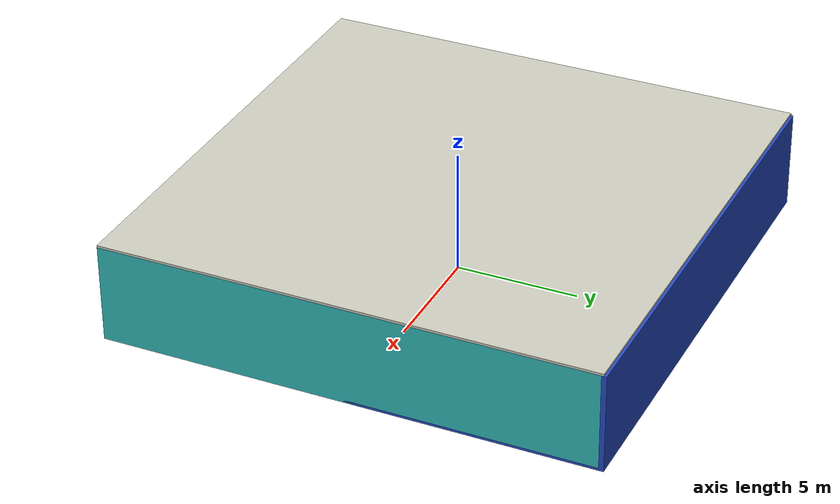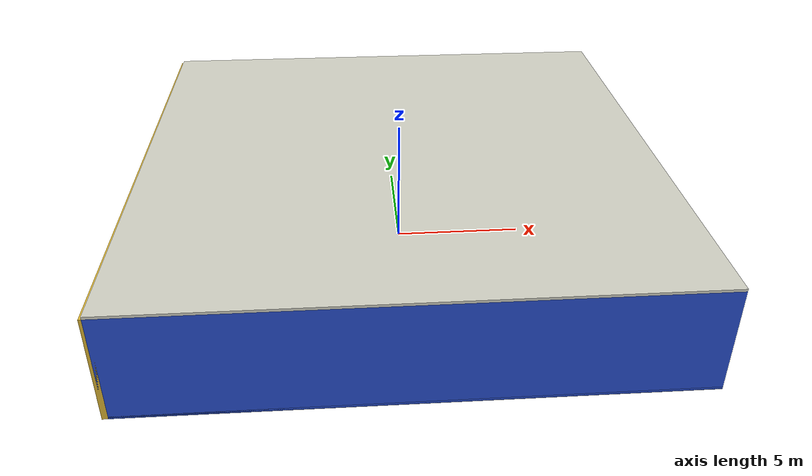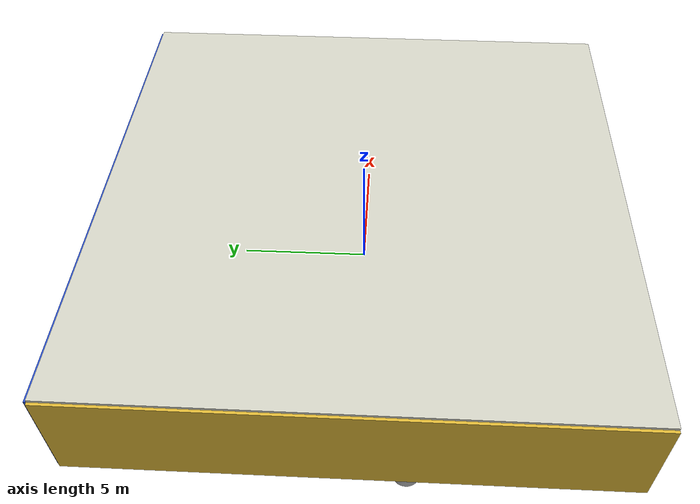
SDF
<sdf version="1.4">
 <world name="default">
  <physics type="ode">
   <max_step_size>0.001</max_step_size>
   <real_time_factor>1</real_time_factor>
   <real_time_update_rate>1000</real_time_update_rate>
   <gravity>0 0 -9.8</gravity>
  </physics>
  <scene><ambient>0.4 0.4 0.4 1</ambient><background>0.7 0.7 0.7 1</background><shadows>1</shadows></scene>
  <model name="Surrounding">
   <static>1</static>
   <link name="Ceiling">
    <collision name="Ceiling_Collision"><geometry><box><size>20 20 0.1</size></box></geometry></collision>
    <visual name="Ceiling_Visual">
     <geometry><box><size>20 20 0.1</size></box></geometry>
     <material>
      <script><uri>file://media/materials/scripts/gazebo.material</uri><name>Gazebo/PaintedWall</name></script>
     </material>
    </visual>
    <pose>0 0 4.05 0 0 0</pose>
   </link>
   <link name="Wall_South">
    <collision name="Wall_South_Collision">
     <geometry><box><size>20 0 4</size></box></geometry>
     <pose>0 0 2 0 -0 0</pose>
    </collision>
    <visual name="Wall_South_Visual">
     <pose>0 0 2 0 -0 0</pose>
     <geometry><box><size>20 0 4</size></box></geometry>
     <material>
      <script><uri>file://media/materials/scripts/gazebo.material</uri><name>Gazebo/BlueGlow</name></script>
     </material>
    </visual>
    <velocity_decay><linear>0</linear><angular>0</angular></velocity_decay>
    <pose>0 -10 0 0 -0 0</pose>
   </link>
   <link name="Wall_East">
    <collision name="Wall_21_Collision">
     <geometry><box><size>20 0 4</size></box></geometry>
     <pose>0 0 2 0 -0 0</pose>
    </collision>
    <visual name="Wall_21_Visual">
     <pose>0 0 2 0 -0 0</pose>
     <geometry><box><size>20 0 4</size></box></geometry>
     <material>
      <script><uri>file://media/materials/scripts/gazebo.material</uri><name>Gazebo/TurquoiseGlow</name></script>
     </material>
    </visual>
    <velocity_decay><linear>0</linear><angular>0</angular></velocity_decay>
    <pose>10 0 0 0 -0 1.5708</pose>
   </link>
   <link name="Wall_North">
    <collision name="Wall_22_Collision">
     <geometry><box><size>20 0.2 4</size></box></geometry>
     <pose>0 0 2 0 -0 0</pose>
    </collision>
    <visual name="Wall_22_Visual">
     <pose>0 0 2 0 -0 0</pose>
     <geometry><box><size>20 0.2 4</size></box></geometry>
     <material>
      <script><uri>file://media/materials/scripts/gazebo.material</uri><name>Gazebo/BlueLaser</name></script>
     </material>
    </visual>
    <velocity_decay><linear>0</linear><angular>0</angular></velocity_decay>
    <pose>0 10 0 0 -0 0</pose>
   </link>
   <link name="Wall_West">
    <collision name="Wall_23_Collision">
     <geometry><box><size>20 0.2 4</size></box></geometry>
     <pose>0 0 2 0 -0 0</pose>
    </collision>
    <visual name="Wall_23_Visual">
     <pose>0 0 2 0 -0 0</pose>
     <geometry><box><size>20 0.2 4</size></box></geometry>
     <material>
      <script><uri>file://media/materials/scripts/gazebo.material</uri><name>Gazebo/Gold</name></script>
     </material>
    </visual>
    <velocity_decay><linear>0</linear><angular>0</angular></velocity_decay>
    <pose>-10 0 0 0 0 -1.5708</pose>
   </link>
   <link name="Ground_link">
    <collision name="collision">
     <pose>0 0 .05 0 -0 0</pose>
     <geometry><box><size>20 20 0.1</size></box></geometry>
    </collision>
    <visual name="visual">
     <pose>0 0 .05 0 -0 0</pose>
     <geometry><box><size>20 20 0.1</size></box></geometry>
     <material>
      <script><uri>file://media/materials/scripts/gazebo.material</uri><name>Gazebo/BlueGlow</name></script>
     </material>
    </visual>
   </link>
   <static>1</static>
  </model>
  <spherical_coordinates>
   <surface_model>EARTH_WGS84</surface_model>
   <latitude_deg>0</latitude_deg>
   <longitude_deg>0</longitude_deg>
   <elevation>0</elevation>
   <heading_deg>0</heading_deg>
  </spherical_coordinates>
  <light name="lightball_0" type="diffuse">
   <diffuse>0.8 0.8 0.8 1</diffuse>
   <specular>0.2 0.2 0.2 1</specular>
   <attenuation>
    <range>100</range>
    <constant>0.7</constant>
    <linear>0.01</linear>
    <quadratic>0.001</quadratic>
   </attenuation>
   <direction>-0.5 0.1 -0.9</direction>
   <pose>-4.23094239181 7.8447238789 1.70255044602 0 0 0</pose>
  </light>
  <light name="lightball_1" type="diffuse">
   <diffuse>0.8 0.8 0.8 1</diffuse>
   <specular>0.2 0.2 0.2 1</specular>
   <attenuation>
    <range>100</range>
    <constant>0.7</constant>
    <linear>0.01</linear>
    <quadratic>0.001</quadratic>
   </attenuation>
   <direction>-0.5 0.1 -0.9</direction>
   <pose>1.58082399802 -2.96575763037 2.90356370341 0 0 0</pose>
  </light>
  <light name="lightball_2" type="diffuse">
   <diffuse>0.8 0.8 0.8 1</diffuse>
   <specular>0.2 0.2 0.2 1</specular>
   <attenuation>
    <range>100</range>
    <constant>0.7</constant>
    <linear>0.01</linear>
    <quadratic>0.001</quadratic>
   </attenuation>
   <direction>-0.5 0.1 -0.9</direction>
   <pose>-0.933613768795 -4.03693456324 3.79106532167 0 0 0</pose>
  </light>
  <include>
   <uri>model://textured_shapes</uri>
   <pose>-8.03270581328 -1.9981826392 0 0 0 1.51298781388</pose>
  </include>
  <include><uri>model://table</uri><pose>-0.951245557371 -7.78658680263 0 0 0 2.70537114071</pose></include>
  <include>
   <uri>model://construction_cone</uri>
   <pose>-1.14473143473 1.35709583892 0 0 0 2.53343842389</pose>
  </include>
  <include><uri>model://table</uri><pose>0.991971825793 -1.96269380815 0 0 0 0.0101005866535</pose></include>
  <include>
   <uri>model://construction_cone</uri>
   <pose>1.87051789483 4.68871742786 0 0 0 0.602316755231</pose>
  </include>
  <include>
   <uri>model://robocup_3Dsim_goal</uri>
   <pose>4.56247849326 7.35386133747 0 0 0 0.642236833537</pose>
  </include>
 </world>
</sdf>

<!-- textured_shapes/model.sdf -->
<sdf version="1.6">
  <model name="textured_shapes">
    <pose>0 0 0.5 0 0 0</pose>
    <link name="box">
      <pose>0 -1.5 0 0 0 0</pose>
      <collision name="collision">
        <geometry>
          <box>
            <size>1 1 1</size>
          </box>
        </geometry>
      </collision>
      <visual name="visual">
        <geometry>
          <box>
            <size>1 1 1</size>
          </box>
        </geometry>
        <material>
          <script>
            <uri>model://../model_source/models/textured_shapes/materials/scripts</uri>
            <uri>model://../model_source/models/textured_shapes/materials/textures</uri>
            <name>TexturedShape/Squares</name>
          </script>
        </material>
      </visual>
    </link>
    <link name="sphere">
      <collision name="collision">
        <geometry>
          <sphere>
            <radius>0.5</radius>
          </sphere>
        </geometry>
      </collision>
      <visual name="visual">
        <geometry>
          <sphere>
            <radius>0.5</radius>
          </sphere>
        </geometry>
        <material>
          <script>
            <uri>model://../model_source/models/textured_shapes/materials/scripts</uri>
            <uri>model://../model_source/models/textured_shapes/materials/textures</uri>
            <name>TexturedShape/Squares</name>
          </script>
        </material>
      </visual>
    </link>
    <link name="cylinder">
      <pose>0 1.5 0 0 0 0</pose>
      <collision name="collision">
        <geometry>
          <cylinder>
            <radius>0.5</radius>
            <length>1</length>
          </cylinder>
        </geometry>
      </collision>
      <visual name="visual">
        <geometry>
          <cylinder>
            <radius>0.5</radius>
            <length>1</length>
          </cylinder>
        </geometry>
        <material>
          <script>
            <uri>model://../model_source/models/textured_shapes/materials/scripts</uri>
            <uri>model://../model_source/models/textured_shapes/materials/textures</uri>
            <name>TexturedShape/Squares</name>
          </script>
        </material>
      </visual>
    </link>
  </model>
</sdf>

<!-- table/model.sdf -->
<sdf version="1.5">
  <model name="table">
    <static>true</static>
    <link name="link">
      <collision name="surface">
        <pose>0 0 1.0 0 0 0</pose>
        <geometry>
          <box>
            <size>1.5 0.8 0.03</size>
          </box>
        </geometry>
        <surface>
          <friction>
            <ode>
              <mu>0.6</mu>
              <mu2>0.6</mu2>
            </ode>
          </friction>
        </surface>
      </collision>
      <visual name="visual1">
        <pose>0 0 1.0 0 0 0</pose>
        <geometry>
          <box>
            <size>1.5 0.8 0.03</size>
          </box>
        </geometry>
        <material>
          <script>
            <uri>model://media/materials/scripts/gazebo.material</uri>
            <name>Gazebo/Wood</name>
          </script>
        </material>
      </visual>
      <collision name="front_left_leg">
        <pose>0.68 0.38 0.5 0 0 0</pose>
        <geometry>
          <cylinder>
            <radius>0.02</radius>
            <length>1.0</length>
          </cylinder>
        </geometry>
      </collision>
      <visual name="front_left_leg">
        <pose>0.68 0.38 0.5 0 0 0</pose>
        <geometry>
          <cylinder>
            <radius>0.02</radius>
            <length>1.0</length>
          </cylinder>
        </geometry>
        <material>
          <script>
            <uri>model://media/materials/scripts/gazebo.material</uri>
            <name>Gazebo/Grey</name>
          </script>
        </material>
      </visual>
      <collision name="front_right_leg">
        <pose>0.68 -0.38 0.5 0 0 0</pose>
        <geometry>
          <cylinder>
            <radius>0.02</radius>
            <length>1.0</length>
          </cylinder>
        </geometry>
      </collision>
      <visual name="front_right_leg">
        <pose>0.68 -0.38 0.5 0 0 0</pose>
        <geometry>
          <cylinder>
            <radius>0.02</radius>
            <length>1.0</length>
          </cylinder>
        </geometry>
        <material>
          <script>
            <uri>model://media/materials/scripts/gazebo.material</uri>
            <name>Gazebo/Grey</name>
          </script>
        </material>
      </visual>
      <collision name="back_right_leg">
        <pose>-0.68 -0.38 0.5 0 0 0</pose>
        <geometry>
          <cylinder>
            <radius>0.02</radius>
            <length>1.0</length>
          </cylinder>
        </geometry>
      </collision>
      <visual name="back_right_leg">
        <pose>-0.68 -0.38 0.5 0 0 0</pose>
        <geometry>
          <cylinder>
            <radius>0.02</radius>
            <length>1.0</length>
          </cylinder>
        </geometry>
        <material>
          <script>
            <uri>model://media/materials/scripts/gazebo.material</uri>
            <name>Gazebo/Grey</name>
          </script>
        </material>
      </visual>
      <collision name="back_left_leg">
        <pose>-0.68 0.38 0.5 0 0 0</pose>
        <geometry>
          <cylinder>
            <radius>0.02</radius>
            <length>1.0</length>
          </cylinder>
        </geometry>
      </collision>
      <visual name="back_left_leg">
        <pose>-0.68 0.38 0.5 0 0 0</pose>
        <geometry>
          <cylinder>
            <radius>0.02</radius>
            <length>1.0</length>
          </cylinder>
        </geometry>
        <material>
          <script>
            <uri>model://media/materials/scripts/gazebo.material</uri>
            <name>Gazebo/Grey</name>
          </script>
        </material>
      </visual>
    </link>
  </model>
</sdf>

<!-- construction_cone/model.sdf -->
<sdf version="1.5">
  <model name="Construction Cone">
    <link name="link">
      <collision name="collision">
        <geometry>
          <mesh>
            <scale>10 10 10</scale>
            <uri>file://isr-testbed/construction_cone/meshes/construction_cone.dae</uri>
          </mesh>
        </geometry>
      </collision>
      <visual name="visual">
        <geometry>
          <mesh>
            <scale>10 10 10</scale>
            <uri>file://isr-testbed/construction_cone/meshes/construction_cone.dae</uri>
          </mesh>
        </geometry>
      </visual>
    </link>
  </model>
</sdf>

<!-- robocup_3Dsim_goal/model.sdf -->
<sdf version="1.5">
  <model name="robocup_3d_goal">
    <static>true</static>
    <link name="left_post">
      <pose>0 1.05 0.45 0 0 0</pose>
      <collision name="collision">
        <geometry>
          <cylinder>
            <radius>0.05</radius>
            <length>0.9</length>
          </cylinder>
        </geometry>
      </collision>
      <visual name="visual">
        <geometry>
          <cylinder>
            <radius>0.05</radius>
            <length>0.9</length>
          </cylinder>
        </geometry>
        <material>
          <script>
            <uri>file://media/materials/scripts/gazebo.material</uri>
            <name>Gazebo/ZincYellow</name>
          </script>
        </material>
      </visual>
    </link>
    <link name="left_support_horiz_lower">
      <pose>0.30 1.05 0.01 0 0 0</pose>
      <collision name="collision">
        <geometry>
          <box>
            <size>0.50 0.02 0.02</size>
          </box>
        </geometry>
      </collision>
      <visual name="visual">
        <geometry>
          <box>
            <size>0.50 0.02 0.02</size>
          </box>
        </geometry>
        <material>
          <script>
            <uri>file://media/materials/scripts/gazebo.material</uri>
            <name>Gazebo/White</name>
          </script>
        </material>
      </visual>
    </link>
    <link name="left_support_horiz_upper">
      <pose>0.30 1.05 0.79 0 0 0</pose>
      <collision name="collision">
        <geometry>
          <box>
            <size>0.50 0.02 0.02</size>
          </box>
        </geometry>
      </collision>
      <visual name="visual">
        <geometry>
          <box>
            <size>0.50 0.02 0.02</size>
          </box>
        </geometry>
        <material>
          <script>
            <uri>file://media/materials/scripts/gazebo.material</uri>
            <name>Gazebo/White</name>
          </script>
        </material>
      </visual>
    </link>
    <link name="left_support_vertical">
      <pose>0.56 1.05 0.4 0 1.5708 0</pose>
      <collision name="collision">
        <geometry>
          <box>
            <size>0.80 0.02 0.02</size>
          </box>
        </geometry>
      </collision>
      <visual name="visual">
        <geometry>
          <box>
            <size>0.80 0.02 0.02</size>
          </box>
        </geometry>
        <material>
          <script>
            <uri>file://media/materials/scripts/gazebo.material</uri>
            <name>Gazebo/White</name>
          </script>
        </material>
      </visual>
    </link>
    <link name="right_support_horiz_lower">
      <pose>0.30 -1.05 0.01 0 0 0</pose>
      <collision name="collision">
        <geometry>
          <box>
            <size>0.50 0.02 0.02</size>
          </box>
        </geometry>
      </collision>
      <visual name="visual">
        <geometry>
          <box>
            <size>0.50 0.02 0.02</size>
          </box>
        </geometry>
        <material>
          <script>
            <uri>file://media/materials/scripts/gazebo.material</uri>
            <name>Gazebo/White</name>
          </script>
        </material>
      </visual>
    </link>
    <link name="right_support_horiz_upper">
      <pose>0.30 -1.05 0.79 0 0 0</pose>
      <collision name="collision">
        <geometry>
          <box>
            <size>0.50 0.02 0.02</size>
          </box>
        </geometry>
      </collision>
      <visual name="visual">
        <geometry>
          <box>
            <size>0.50 0.02 0.02</size>
          </box>
        </geometry>
        <material>
          <script>
            <uri>file://media/materials/scripts/gazebo.material</uri>
            <name>Gazebo/White</name>
          </script>
        </material>
      </visual>
    </link>
    <link name="right_support_vertical">
      <pose>0.56 -1.05 0.4 0 1.5708 0</pose>
      <collision name="collision">
        <geometry>
          <box>
            <size>0.80 0.02 0.02</size>
          </box>
        </geometry>
      </collision>
      <visual name="visual">
        <geometry>
          <box>
            <size>0.80 0.02 0.02</size>
          </box>
        </geometry>
        <material>
          <script>
            <uri>file://media/materials/scripts/gazebo.material</uri>
            <name>Gazebo/White</name>
          </script>
        </material>
      </visual>
    </link>
    <link name="center_support_horiz_lower">
      <pose>0.56 0 0.01 0 1.5708 0</pose>
      <collision name="collision">
        <geometry>
          <box>
            <size>0.02 2.08 0.02</size>
          </box>
        </geometry>
      </collision>
      <visual name="visual">
        <geometry>
          <box>
            <size>0.02 2.08 0.02</size>
          </box>
        </geometry>
        <material>
          <script>
            <uri>file://media/materials/scripts/gazebo.material</uri>
            <name>Gazebo/White</name>
          </script>
        </material>
      </visual>
    </link>
    <link name="center_support_horiz_upper">
      <pose>0.56 0 0.79 0 1.5708 0</pose>
      <collision name="collision">
        <geometry>
          <box>
            <size>0.02 2.08 0.02</size>
          </box>
        </geometry>
      </collision>
      <visual name="visual">
        <geometry>
          <box>
            <size>0.02 2.08 0.02</size>
          </box>
        </geometry>
        <material>
          <script>
            <uri>file://media/materials/scripts/gazebo.material</uri>
            <name>Gazebo/White</name>
          </script>
        </material>
      </visual>
    </link>
    <link name="right_post">
      <pose>0 -1.05 0.45 0 0 0</pose>
      <collision name="collision">
        <geometry>
          <cylinder>
            <radius>0.05</radius>
            <length>0.9</length>
          </cylinder>
        </geometry>
      </collision>
      <visual name="visual">
        <geometry>
          <cylinder>
            <radius>0.05</radius>
            <length>0.9</length>
          </cylinder>
        </geometry>
        <material>
          <script>
            <uri>file://media/materials/scripts/gazebo.material</uri>
            <name>Gazebo/ZincYellow</name>
          </script>
        </material>
      </visual>
    </link>
    <link name="crossbar">
      <pose>0 0 0.85 1.57 1.57 0</pose>
      <collision name="collision">
        <geometry>
          <cylinder>
            <radius>0.05</radius>
            <length>2.0</length>
          </cylinder>
        </geometry>
      </collision>
      <visual name="visual">
        <geometry>
          <cylinder>
            <radius>0.05</radius>
            <length>2.0</length>
          </cylinder>
        </geometry>
        <material>
          <script>
            <uri>file://media/materials/scripts/gazebo.material</uri>
            <name>Gazebo/ZincYellow</name>
          </script>
        </material>
      </visual>
    </link>
    <link name="center_net">
      <pose>0.56 0 0.40 0 0 0</pose>
      <collision name="collision">
        <geometry>
          <box>
            <size>0.01 2.1 0.80</size>
          </box>
        </geometry>
      </collision>
      <visual name="visual">
        <geometry>
          <box>
            <size>0.01 2.1 0.80</size>
          </box>
        </geometry>
        <material>
          <script>
            <uri>model://../model_source/models/robocup09_spl_field/materials/scripts/</uri>
            <uri>model://../model_source/models/robocup09_spl_field/materials/textures/</uri>
            <name>RoboCup/Net</name>
          </script>
        </material>
      </visual>
    </link>
    <link name="left_net">
      <pose>0.30 1.05 0.40 0 0 0</pose>
      <collision name="collision">
        <geometry>
          <box>
            <size>0.50 0.01 0.76</size>
          </box>
        </geometry>
      </collision>
      <visual name="visual">
        <geometry>
          <box>
            <size>0.50 0.01 0.76</size>
          </box>
        </geometry>
        <material>
          <script>
            <uri>model://../model_source/models/robocup09_spl_field/materials/scripts/</uri>
            <uri>model://../model_source/models/robocup09_spl_field/materials/textures/</uri>
            <name>RoboCup/Net</name>
          </script>
        </material>
      </visual>
    </link>
    <link name="right_net">
      <pose>0.30 -1.05 0.40 0 0 0</pose>
      <collision name="collision">
        <geometry>
          <box>
            <size>0.50 0.01 0.76</size>
          </box>
        </geometry>
      </collision>
      <visual name="visual">
        <geometry>
          <box>
            <size>0.50 0.01 0.76</size>
          </box>
        </geometry>
        <material>
          <script>
            <uri>model://../model_source/models/robocup09_spl_field/materials/scripts/</uri>
            <uri>model://../model_source/models/robocup09_spl_field/materials/textures/</uri>
            <name>RoboCup/Net</name>
          </script>
        </material>
      </visual>
    </link>
  </model>
</sdf>
